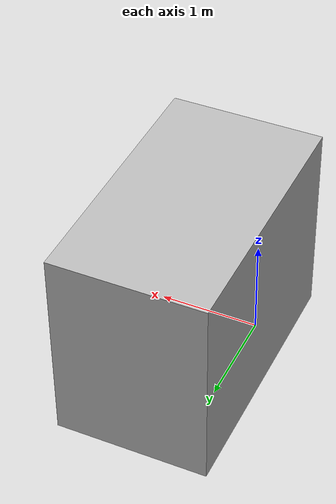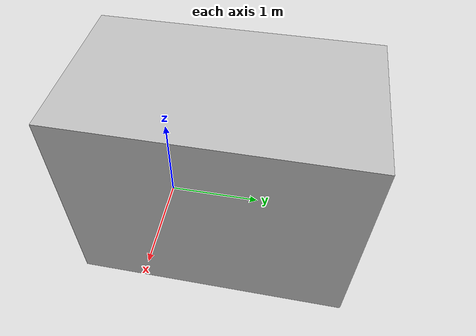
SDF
<?xml version="1.0" ?>
<sdf version="1.5">
  <model name='obs09'>
    <static>true</static>
    <link name="link">
      <collision name='collision'>
        <geometry>
          <mesh>
            <uri>model://obs09/mesh/Obs09.stl</uri>
            <scale>0.01 0.01 0.01</scale>
          </mesh>
        </geometry>
      </collision>

      <visual name='visual'>
        <geometry>
          <mesh>
            <uri>model://obs09/mesh/Obs09.stl</uri>
            <scale>0.01 0.01 0.01</scale>
          </mesh>
        </geometry>
        <material>
          <script>
            <uri>model://obs09/materials/scripts</uri>
            <uri>model://obs09/materials/textures</uri>
            <name>buildMat/Tex9</name>
          </script>
        </material>
      </visual>
    </link>
  </model>
</sdf>
